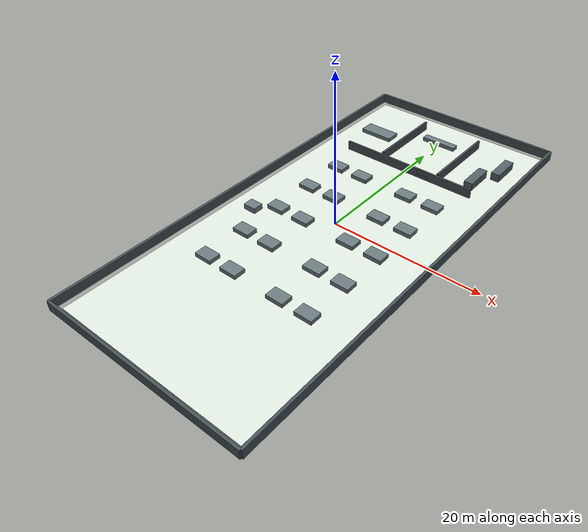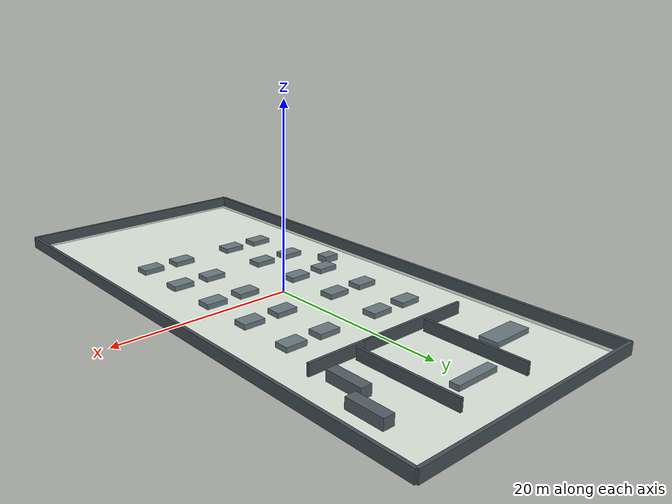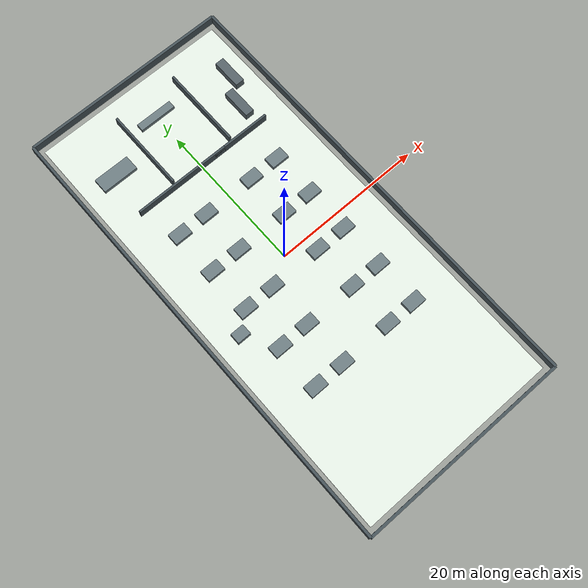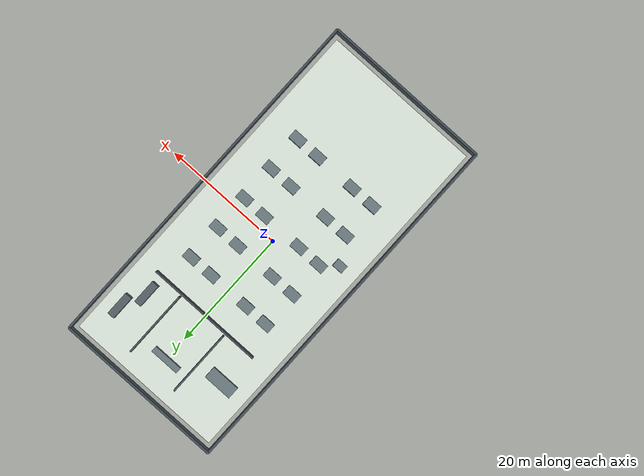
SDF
<?xml version="1.0" ?>
<sdf version="1.6">
  <world name="office_suite">
    <gravity>0 0 -9.8</gravity>
    <scene>
      <ambient>0.65 0.65 0.65 1</ambient>
      <background>0.78 0.84 0.88 1</background>
    </scene>
    <include>
      <uri>model://sun</uri>
    </include>
    <model name="office_suite_floor">
      <static>true</static>
      <pose>0.000 0.000 -0.025 0 0 0</pose>
      <link name="floor_link">
        <collision name="floor_collision">
          <geometry>
            <box><size>26.400 58.400 0.050</size></box>
          </geometry>
        </collision>
        <visual name="floor_visual">
          <geometry>
            <box><size>26.400 58.400 0.050</size></box>
          </geometry>
          <material><ambient>0.88 0.92 0.88 1</ambient><diffuse>0.88 0.92 0.88 1</diffuse></material>
        </visual>
      </link>
    </model>
    <model name="outer_north">
      <static>true</static>
      <pose>0.000 30.000 0.625 0 0 0</pose>
      <link name="outer_north_link">
        <collision name="outer_north_collision">
          <geometry>
            <box><size>28.000 0.350 1.250</size></box>
          </geometry>
        </collision>
        <visual name="outer_north_visual">
          <geometry>
            <box><size>28.000 0.350 1.250</size></box>
          </geometry>
          <material><ambient>0.27 0.32 0.34 1</ambient><diffuse>0.27 0.32 0.34 1</diffuse></material>
        </visual>
      </link>
    </model>
    <model name="outer_south">
      <static>true</static>
      <pose>0.000 -30.000 0.625 0 0 0</pose>
      <link name="outer_south_link">
        <collision name="outer_south_collision">
          <geometry>
            <box><size>28.000 0.350 1.250</size></box>
          </geometry>
        </collision>
        <visual name="outer_south_visual">
          <geometry>
            <box><size>28.000 0.350 1.250</size></box>
          </geometry>
          <material><ambient>0.27 0.32 0.34 1</ambient><diffuse>0.27 0.32 0.34 1</diffuse></material>
        </visual>
      </link>
    </model>
    <model name="outer_west">
      <static>true</static>
      <pose>-14.000 0.000 0.625 0 0 0</pose>
      <link name="outer_west_link">
        <collision name="outer_west_collision">
          <geometry>
            <box><size>0.350 60.000 1.250</size></box>
          </geometry>
        </collision>
        <visual name="outer_west_visual">
          <geometry>
            <box><size>0.350 60.000 1.250</size></box>
          </geometry>
          <material><ambient>0.27 0.32 0.34 1</ambient><diffuse>0.27 0.32 0.34 1</diffuse></material>
        </visual>
      </link>
    </model>
    <model name="outer_east">
      <static>true</static>
      <pose>14.000 0.000 0.625 0 0 0</pose>
      <link name="outer_east_link">
        <collision name="outer_east_collision">
          <geometry>
            <box><size>0.350 60.000 1.250</size></box>
          </geometry>
        </collision>
        <visual name="outer_east_visual">
          <geometry>
            <box><size>0.350 60.000 1.250</size></box>
          </geometry>
          <material><ambient>0.27 0.32 0.34 1</ambient><diffuse>0.27 0.32 0.34 1</diffuse></material>
        </visual>
      </link>
    </model>
    <model name="office_north_wall_left">
      <static>true</static>
      <pose>-3.000 15.000 0.625 0 0 0</pose>
      <link name="office_north_wall_left_link">
        <collision name="office_north_wall_left_collision">
          <geometry>
            <box><size>13.000 0.280 1.250</size></box>
          </geometry>
        </collision>
        <visual name="office_north_wall_left_visual">
          <geometry>
            <box><size>13.000 0.280 1.250</size></box>
          </geometry>
          <material><ambient>0.27 0.32 0.34 1</ambient><diffuse>0.27 0.32 0.34 1</diffuse></material>
        </visual>
      </link>
    </model>
    <model name="office_north_wall_right">
      <static>true</static>
      <pose>6.000 15.000 0.625 0 0 0</pose>
      <link name="office_north_wall_right_link">
        <collision name="office_north_wall_right_collision">
          <geometry>
            <box><size>8.000 0.280 1.250</size></box>
          </geometry>
        </collision>
        <visual name="office_north_wall_right_visual">
          <geometry>
            <box><size>8.000 0.280 1.250</size></box>
          </geometry>
          <material><ambient>0.27 0.32 0.34 1</ambient><diffuse>0.27 0.32 0.34 1</diffuse></material>
        </visual>
      </link>
    </model>
    <model name="office_server_wall">
      <static>true</static>
      <pose>4.800 21.000 0.625 0 0 0</pose>
      <link name="office_server_wall_link">
        <collision name="office_server_wall_collision">
          <geometry>
            <box><size>0.280 11.000 1.250</size></box>
          </geometry>
        </collision>
        <visual name="office_server_wall_visual">
          <geometry>
            <box><size>0.280 11.000 1.250</size></box>
          </geometry>
          <material><ambient>0.27 0.32 0.34 1</ambient><diffuse>0.27 0.32 0.34 1</diffuse></material>
        </visual>
      </link>
    </model>
    <model name="office_meeting_wall">
      <static>true</static>
      <pose>-4.000 21.000 0.625 0 0 0</pose>
      <link name="office_meeting_wall_link">
        <collision name="office_meeting_wall_collision">
          <geometry>
            <box><size>0.280 11.000 1.250</size></box>
          </geometry>
        </collision>
        <visual name="office_meeting_wall_visual">
          <geometry>
            <box><size>0.280 11.000 1.250</size></box>
          </geometry>
          <material><ambient>0.27 0.32 0.34 1</ambient><diffuse>0.27 0.32 0.34 1</diffuse></material>
        </visual>
      </link>
    </model>
    <model name="office_desk__7_5__14">
      <static>true</static>
      <pose>-7.500 -14.000 0.275 0 0 0</pose>
      <link name="office_desk__7_5__14_link">
        <collision name="office_desk__7_5__14_collision">
          <geometry>
            <box><size>2.400 1.600 0.550</size></box>
          </geometry>
        </collision>
        <visual name="office_desk__7_5__14_visual">
          <geometry>
            <box><size>2.400 1.600 0.550</size></box>
          </geometry>
          <material><ambient>0.42 0.48 0.50 1</ambient><diffuse>0.42 0.48 0.50 1</diffuse></material>
        </visual>
      </link>
    </model>
    <model name="office_desk__7_5__8">
      <static>true</static>
      <pose>-7.500 -8.000 0.275 0 0 0</pose>
      <link name="office_desk__7_5__8_link">
        <collision name="office_desk__7_5__8_collision">
          <geometry>
            <box><size>2.400 1.600 0.550</size></box>
          </geometry>
        </collision>
        <visual name="office_desk__7_5__8_visual">
          <geometry>
            <box><size>2.400 1.600 0.550</size></box>
          </geometry>
          <material><ambient>0.42 0.48 0.50 1</ambient><diffuse>0.42 0.48 0.50 1</diffuse></material>
        </visual>
      </link>
    </model>
    <model name="office_desk__7_5__2">
      <static>true</static>
      <pose>-7.500 -2.000 0.275 0 0 0</pose>
      <link name="office_desk__7_5__2_link">
        <collision name="office_desk__7_5__2_collision">
          <geometry>
            <box><size>2.400 1.600 0.550</size></box>
          </geometry>
        </collision>
        <visual name="office_desk__7_5__2_visual">
          <geometry>
            <box><size>2.400 1.600 0.550</size></box>
          </geometry>
          <material><ambient>0.42 0.48 0.50 1</ambient><diffuse>0.42 0.48 0.50 1</diffuse></material>
        </visual>
      </link>
    </model>
    <model name="office_desk__7_5_4">
      <static>true</static>
      <pose>-7.500 4.000 0.275 0 0 0</pose>
      <link name="office_desk__7_5_4_link">
        <collision name="office_desk__7_5_4_collision">
          <geometry>
            <box><size>2.400 1.600 0.550</size></box>
          </geometry>
        </collision>
        <visual name="office_desk__7_5_4_visual">
          <geometry>
            <box><size>2.400 1.600 0.550</size></box>
          </geometry>
          <material><ambient>0.42 0.48 0.50 1</ambient><diffuse>0.42 0.48 0.50 1</diffuse></material>
        </visual>
      </link>
    </model>
    <model name="office_desk__7_5_10">
      <static>true</static>
      <pose>-7.500 10.000 0.275 0 0 0</pose>
      <link name="office_desk__7_5_10_link">
        <collision name="office_desk__7_5_10_collision">
          <geometry>
            <box><size>2.400 1.600 0.550</size></box>
          </geometry>
        </collision>
        <visual name="office_desk__7_5_10_visual">
          <geometry>
            <box><size>2.400 1.600 0.550</size></box>
          </geometry>
          <material><ambient>0.42 0.48 0.50 1</ambient><diffuse>0.42 0.48 0.50 1</diffuse></material>
        </visual>
      </link>
    </model>
    <model name="office_desk__3_5__14">
      <static>true</static>
      <pose>-3.500 -14.000 0.275 0 0 0</pose>
      <link name="office_desk__3_5__14_link">
        <collision name="office_desk__3_5__14_collision">
          <geometry>
            <box><size>2.400 1.600 0.550</size></box>
          </geometry>
        </collision>
        <visual name="office_desk__3_5__14_visual">
          <geometry>
            <box><size>2.400 1.600 0.550</size></box>
          </geometry>
          <material><ambient>0.42 0.48 0.50 1</ambient><diffuse>0.42 0.48 0.50 1</diffuse></material>
        </visual>
      </link>
    </model>
    <model name="office_desk__3_5__8">
      <static>true</static>
      <pose>-3.500 -8.000 0.275 0 0 0</pose>
      <link name="office_desk__3_5__8_link">
        <collision name="office_desk__3_5__8_collision">
          <geometry>
            <box><size>2.400 1.600 0.550</size></box>
          </geometry>
        </collision>
        <visual name="office_desk__3_5__8_visual">
          <geometry>
            <box><size>2.400 1.600 0.550</size></box>
          </geometry>
          <material><ambient>0.42 0.48 0.50 1</ambient><diffuse>0.42 0.48 0.50 1</diffuse></material>
        </visual>
      </link>
    </model>
    <model name="office_desk__3_5__2">
      <static>true</static>
      <pose>-3.500 -2.000 0.275 0 0 0</pose>
      <link name="office_desk__3_5__2_link">
        <collision name="office_desk__3_5__2_collision">
          <geometry>
            <box><size>2.400 1.600 0.550</size></box>
          </geometry>
        </collision>
        <visual name="office_desk__3_5__2_visual">
          <geometry>
            <box><size>2.400 1.600 0.550</size></box>
          </geometry>
          <material><ambient>0.42 0.48 0.50 1</ambient><diffuse>0.42 0.48 0.50 1</diffuse></material>
        </visual>
      </link>
    </model>
    <model name="office_desk__3_5_4">
      <static>true</static>
      <pose>-3.500 4.000 0.275 0 0 0</pose>
      <link name="office_desk__3_5_4_link">
        <collision name="office_desk__3_5_4_collision">
          <geometry>
            <box><size>2.400 1.600 0.550</size></box>
          </geometry>
        </collision>
        <visual name="office_desk__3_5_4_visual">
          <geometry>
            <box><size>2.400 1.600 0.550</size></box>
          </geometry>
          <material><ambient>0.42 0.48 0.50 1</ambient><diffuse>0.42 0.48 0.50 1</diffuse></material>
        </visual>
      </link>
    </model>
    <model name="office_desk__3_5_10">
      <static>true</static>
      <pose>-3.500 10.000 0.275 0 0 0</pose>
      <link name="office_desk__3_5_10_link">
        <collision name="office_desk__3_5_10_collision">
          <geometry>
            <box><size>2.400 1.600 0.550</size></box>
          </geometry>
        </collision>
        <visual name="office_desk__3_5_10_visual">
          <geometry>
            <box><size>2.400 1.600 0.550</size></box>
          </geometry>
          <material><ambient>0.42 0.48 0.50 1</ambient><diffuse>0.42 0.48 0.50 1</diffuse></material>
        </visual>
      </link>
    </model>
    <model name="office_desk_3_5__14">
      <static>true</static>
      <pose>3.500 -14.000 0.275 0 0 0</pose>
      <link name="office_desk_3_5__14_link">
        <collision name="office_desk_3_5__14_collision">
          <geometry>
            <box><size>2.400 1.600 0.550</size></box>
          </geometry>
        </collision>
        <visual name="office_desk_3_5__14_visual">
          <geometry>
            <box><size>2.400 1.600 0.550</size></box>
          </geometry>
          <material><ambient>0.42 0.48 0.50 1</ambient><diffuse>0.42 0.48 0.50 1</diffuse></material>
        </visual>
      </link>
    </model>
    <model name="office_desk_3_5__8">
      <static>true</static>
      <pose>3.500 -8.000 0.275 0 0 0</pose>
      <link name="office_desk_3_5__8_link">
        <collision name="office_desk_3_5__8_collision">
          <geometry>
            <box><size>2.400 1.600 0.550</size></box>
          </geometry>
        </collision>
        <visual name="office_desk_3_5__8_visual">
          <geometry>
            <box><size>2.400 1.600 0.550</size></box>
          </geometry>
          <material><ambient>0.42 0.48 0.50 1</ambient><diffuse>0.42 0.48 0.50 1</diffuse></material>
        </visual>
      </link>
    </model>
    <model name="office_desk_3_5__2">
      <static>true</static>
      <pose>3.500 -2.000 0.275 0 0 0</pose>
      <link name="office_desk_3_5__2_link">
        <collision name="office_desk_3_5__2_collision">
          <geometry>
            <box><size>2.400 1.600 0.550</size></box>
          </geometry>
        </collision>
        <visual name="office_desk_3_5__2_visual">
          <geometry>
            <box><size>2.400 1.600 0.550</size></box>
          </geometry>
          <material><ambient>0.42 0.48 0.50 1</ambient><diffuse>0.42 0.48 0.50 1</diffuse></material>
        </visual>
      </link>
    </model>
    <model name="office_desk_3_5_4">
      <static>true</static>
      <pose>3.500 4.000 0.275 0 0 0</pose>
      <link name="office_desk_3_5_4_link">
        <collision name="office_desk_3_5_4_collision">
          <geometry>
            <box><size>2.400 1.600 0.550</size></box>
          </geometry>
        </collision>
        <visual name="office_desk_3_5_4_visual">
          <geometry>
            <box><size>2.400 1.600 0.550</size></box>
          </geometry>
          <material><ambient>0.42 0.48 0.50 1</ambient><diffuse>0.42 0.48 0.50 1</diffuse></material>
        </visual>
      </link>
    </model>
    <model name="office_desk_3_5_10">
      <static>true</static>
      <pose>3.500 10.000 0.275 0 0 0</pose>
      <link name="office_desk_3_5_10_link">
        <collision name="office_desk_3_5_10_collision">
          <geometry>
            <box><size>2.400 1.600 0.550</size></box>
          </geometry>
        </collision>
        <visual name="office_desk_3_5_10_visual">
          <geometry>
            <box><size>2.400 1.600 0.550</size></box>
          </geometry>
          <material><ambient>0.42 0.48 0.50 1</ambient><diffuse>0.42 0.48 0.50 1</diffuse></material>
        </visual>
      </link>
    </model>
    <model name="office_desk_7_5__14">
      <static>true</static>
      <pose>7.500 -14.000 0.275 0 0 0</pose>
      <link name="office_desk_7_5__14_link">
        <collision name="office_desk_7_5__14_collision">
          <geometry>
            <box><size>2.400 1.600 0.550</size></box>
          </geometry>
        </collision>
        <visual name="office_desk_7_5__14_visual">
          <geometry>
            <box><size>2.400 1.600 0.550</size></box>
          </geometry>
          <material><ambient>0.42 0.48 0.50 1</ambient><diffuse>0.42 0.48 0.50 1</diffuse></material>
        </visual>
      </link>
    </model>
    <model name="office_desk_7_5__8">
      <static>true</static>
      <pose>7.500 -8.000 0.275 0 0 0</pose>
      <link name="office_desk_7_5__8_link">
        <collision name="office_desk_7_5__8_collision">
          <geometry>
            <box><size>2.400 1.600 0.550</size></box>
          </geometry>
        </collision>
        <visual name="office_desk_7_5__8_visual">
          <geometry>
            <box><size>2.400 1.600 0.550</size></box>
          </geometry>
          <material><ambient>0.42 0.48 0.50 1</ambient><diffuse>0.42 0.48 0.50 1</diffuse></material>
        </visual>
      </link>
    </model>
    <model name="office_desk_7_5__2">
      <static>true</static>
      <pose>7.500 -2.000 0.275 0 0 0</pose>
      <link name="office_desk_7_5__2_link">
        <collision name="office_desk_7_5__2_collision">
          <geometry>
            <box><size>2.400 1.600 0.550</size></box>
          </geometry>
        </collision>
        <visual name="office_desk_7_5__2_visual">
          <geometry>
            <box><size>2.400 1.600 0.550</size></box>
          </geometry>
          <material><ambient>0.42 0.48 0.50 1</ambient><diffuse>0.42 0.48 0.50 1</diffuse></material>
        </visual>
      </link>
    </model>
    <model name="office_desk_7_5_4">
      <static>true</static>
      <pose>7.500 4.000 0.275 0 0 0</pose>
      <link name="office_desk_7_5_4_link">
        <collision name="office_desk_7_5_4_collision">
          <geometry>
            <box><size>2.400 1.600 0.550</size></box>
          </geometry>
        </collision>
        <visual name="office_desk_7_5_4_visual">
          <geometry>
            <box><size>2.400 1.600 0.550</size></box>
          </geometry>
          <material><ambient>0.42 0.48 0.50 1</ambient><diffuse>0.42 0.48 0.50 1</diffuse></material>
        </visual>
      </link>
    </model>
    <model name="office_desk_7_5_10">
      <static>true</static>
      <pose>7.500 10.000 0.275 0 0 0</pose>
      <link name="office_desk_7_5_10_link">
        <collision name="office_desk_7_5_10_collision">
          <geometry>
            <box><size>2.400 1.600 0.550</size></box>
          </geometry>
        </collision>
        <visual name="office_desk_7_5_10_visual">
          <geometry>
            <box><size>2.400 1.600 0.550</size></box>
          </geometry>
          <material><ambient>0.42 0.48 0.50 1</ambient><diffuse>0.42 0.48 0.50 1</diffuse></material>
        </visual>
      </link>
    </model>
    <model name="office_meeting_table">
      <static>true</static>
      <pose>-8.500 21.000 0.275 0 0 0</pose>
      <link name="office_meeting_table_link">
        <collision name="office_meeting_table_collision">
          <geometry>
            <box><size>4.800 2.000 0.550</size></box>
          </geometry>
        </collision>
        <visual name="office_meeting_table_visual">
          <geometry>
            <box><size>4.800 2.000 0.550</size></box>
          </geometry>
          <material><ambient>0.42 0.48 0.50 1</ambient><diffuse>0.42 0.48 0.50 1</diffuse></material>
        </visual>
      </link>
    </model>
    <model name="office_server_rack_a">
      <static>true</static>
      <pose>8.800 18.500 0.550 0 0 0</pose>
      <link name="office_server_rack_a_link">
        <collision name="office_server_rack_a_collision">
          <geometry>
            <box><size>1.200 4.000 1.100</size></box>
          </geometry>
        </collision>
        <visual name="office_server_rack_a_visual">
          <geometry>
            <box><size>1.200 4.000 1.100</size></box>
          </geometry>
          <material><ambient>0.33 0.38 0.40 1</ambient><diffuse>0.33 0.38 0.40 1</diffuse></material>
        </visual>
      </link>
    </model>
    <model name="office_server_rack_b">
      <static>true</static>
      <pose>10.600 22.500 0.550 0 0 0</pose>
      <link name="office_server_rack_b_link">
        <collision name="office_server_rack_b_collision">
          <geometry>
            <box><size>1.200 4.000 1.100</size></box>
          </geometry>
        </collision>
        <visual name="office_server_rack_b_visual">
          <geometry>
            <box><size>1.200 4.000 1.100</size></box>
          </geometry>
          <material><ambient>0.33 0.38 0.40 1</ambient><diffuse>0.33 0.38 0.40 1</diffuse></material>
        </visual>
      </link>
    </model>
    <model name="office_reception_counter">
      <static>true</static>
      <pose>0.000 24.000 0.275 0 0 0</pose>
      <link name="office_reception_counter_link">
        <collision name="office_reception_counter_collision">
          <geometry>
            <box><size>5.000 1.000 0.550</size></box>
          </geometry>
        </collision>
        <visual name="office_reception_counter_visual">
          <geometry>
            <box><size>5.000 1.000 0.550</size></box>
          </geometry>
          <material><ambient>0.42 0.48 0.50 1</ambient><diffuse>0.42 0.48 0.50 1</diffuse></material>
        </visual>
      </link>
    </model>
    <model name="office_printer_island">
      <static>true</static>
      <pose>-10.000 -4.000 0.375 0 0 0</pose>
      <link name="office_printer_island_link">
        <collision name="office_printer_island_collision">
          <geometry>
            <box><size>1.800 1.400 0.750</size></box>
          </geometry>
        </collision>
        <visual name="office_printer_island_visual">
          <geometry>
            <box><size>1.800 1.400 0.750</size></box>
          </geometry>
          <material><ambient>0.42 0.48 0.50 1</ambient><diffuse>0.42 0.48 0.50 1</diffuse></material>
        </visual>
      </link>
    </model>
  </world>
</sdf>
